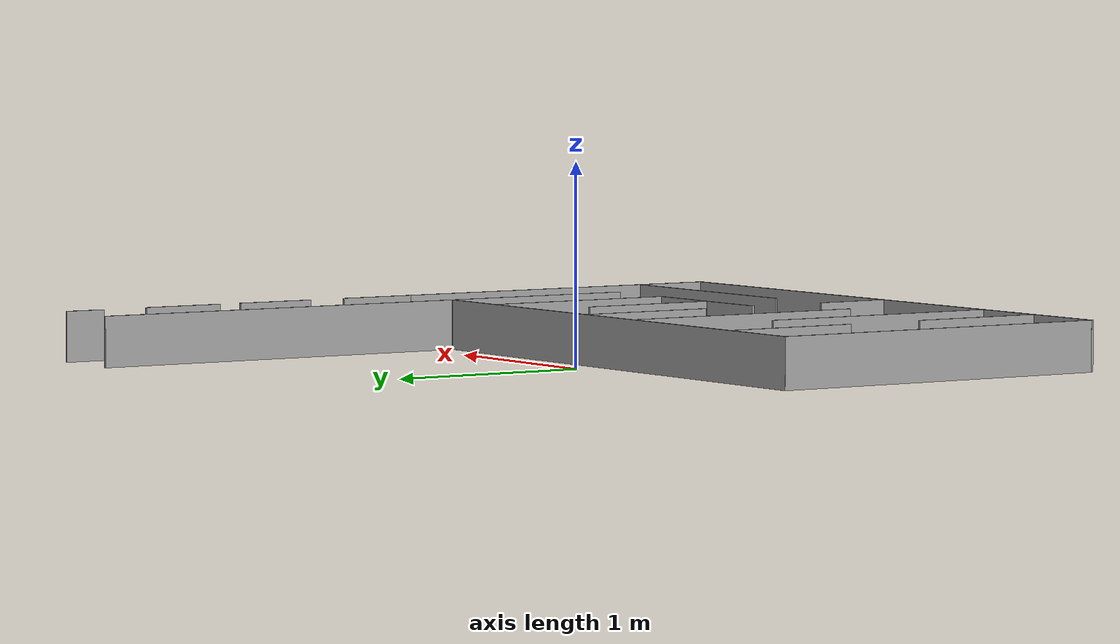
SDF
<?xml version='1.0'?>
<sdf version='1.6'>
  <model name='ris_assg'>
    <pose frame=''>0.1185 -0.065509 0 0 -0 0</pose>
    <link name='Wall_0'>
      <collision name='Wall_0_Collision'>
        <geometry>
          <box>
            <size>1.82069 0.01 0.25</size>
          </box>
        </geometry>
        <pose frame=''>0 0 0.125 0 -0 0</pose>
      </collision>
      <visual name='Wall_0_Visual'>
        <pose frame=''>0 0 0.125 0 -0 0</pose>
        <geometry>
          <box>
            <size>1.82069 0.01 0.25</size>
          </box>
        </geometry>
        <material>
          <script>
            <uri>file://media/materials/scripts/gazebo.material</uri>
            <name>Gazebo/Grey</name>
          </script>
          <ambient>1 1 1 1</ambient>
        </material>
      </visual>
      <pose frame=''>-1.6175 -0.994991 0 0 -0 1.5708</pose>
    </link>
    <link name='Wall_12'>
      <collision name='Wall_12_Collision'>
        <geometry>
          <box>
            <size>1.81 0.01 0.25</size>
          </box>
        </geometry>
        <pose frame=''>0 0 0.125 0 -0 0</pose>
      </collision>
      <visual name='Wall_12_Visual'>
        <pose frame=''>0 0 0.125 0 -0 0</pose>
        <geometry>
          <box>
            <size>1.81 0.01 0.25</size>
          </box>
        </geometry>
        <material>
          <script>
            <uri>file://media/materials/scripts/gazebo.material</uri>
            <name>Gazebo/Grey</name>
          </script>
          <ambient>1 1 1 1</ambient>
        </material>
      </visual>
      <pose frame=''>1.6175 -0.989491 0 0 -0 1.5708</pose>
    </link>
    <link name='Wall_15'>
      <collision name='Wall_15_Collision'>
        <geometry>
          <box>
            <size>0.7 0.01 0.25</size>
          </box>
        </geometry>
        <pose frame=''>0 0 0.125 0 -0 0</pose>
      </collision>
      <visual name='Wall_15_Visual'>
        <pose frame=''>0 0 0.125 0 -0 0</pose>
        <geometry>
          <box>
            <size>0.7 0.01 0.25</size>
          </box>
        </geometry>
        <material>
          <script>
            <uri>file://media/materials/scripts/gazebo.material</uri>
            <name>Gazebo/Grey</name>
          </script>
          <ambient>1 1 1 1</ambient>
        </material>
      </visual>
      <pose frame=''>-1.1765 -1.54949 0 0 -0 1.5708</pose>
    </link>
    <link name='Wall_17'>
      <collision name='Wall_17_Collision'>
        <geometry>
          <box>
            <size>0.7 0.01 0.25</size>
          </box>
        </geometry>
        <pose frame=''>0 0 0.125 0 -0 0</pose>
      </collision>
      <visual name='Wall_17_Visual'>
        <pose frame=''>0 0 0.125 0 -0 0</pose>
        <geometry>
          <box>
            <size>0.7 0.01 0.25</size>
          </box>
        </geometry>
        <material>
          <script>
            <uri>file://media/materials/scripts/gazebo.material</uri>
            <name>Gazebo/Grey</name>
          </script>
          <ambient>1 1 1 1</ambient>
        </material>
      </visual>
      <pose frame=''>-1.1785 -0.439491 0 0 -0 1.5708</pose>
    </link>
    <link name='Wall_21'>
      <collision name='Wall_21_Collision'>
        <geometry>
          <box>
            <size>1.28 0.01 0.25</size>
          </box>
        </geometry>
        <pose frame=''>0 0 0.125 0 -0 0</pose>
      </collision>
      <visual name='Wall_21_Visual'>
        <pose frame=''>0 0 0.125 0 -0 0</pose>
        <geometry>
          <box>
            <size>1.28 0.01 0.25</size>
          </box>
        </geometry>
        <material>
          <script>
            <uri>file://media/materials/scripts/gazebo.material</uri>
            <name>Gazebo/Grey</name>
          </script>
          <ambient>1 1 1 1</ambient>
        </material>
      </visual>
      <pose frame=''>-0.7825 -1.26049 0 0 -0 1.5708</pose>
    </link>
    <link name='Wall_23'>
      <collision name='Wall_23_Collision'>
        <geometry>
          <box>
            <size>1.29 0.01 0.25</size>
          </box>
        </geometry>
        <pose frame=''>0 0 0.125 0 -0 0</pose>
      </collision>
      <visual name='Wall_23_Visual'>
        <pose frame=''>0 0 0.125 0 -0 0</pose>
        <geometry>
          <box>
            <size>1.29 0.01 0.25</size>
          </box>
        </geometry>
        <material>
          <script>
            <uri>file://media/materials/scripts/gazebo.material</uri>
            <name>Gazebo/Grey</name>
          </script>
          <ambient>1 1 1 1</ambient>
        </material>
      </visual>
      <pose frame=''>-0.3805 -0.733491 0 0 -0 1.5708</pose>
    </link>
    <link name='Wall_25'>
      <collision name='Wall_25_Collision'>
        <geometry>
          <box>
            <size>0.71 0.01 0.25</size>
          </box>
        </geometry>
        <pose frame=''>0 0 0.125 0 -0 0</pose>
      </collision>
      <visual name='Wall_25_Visual'>
        <pose frame=''>0 0 0.125 0 -0 0</pose>
        <geometry>
          <box>
            <size>0.71 0.01 0.25</size>
          </box>
        </geometry>
        <material>
          <script>
            <uri>file://media/materials/scripts/gazebo.material</uri>
            <name>Gazebo/Grey</name>
          </script>
          <ambient>1 1 1 1</ambient>
        </material>
      </visual>
      <pose frame=''>0.0255 -0.441491 0 0 -0 1.5708</pose>
    </link>
    <link name='Wall_27'>
      <collision name='Wall_27_Collision'>
        <geometry>
          <box>
            <size>0.4 0.01 0.25</size>
          </box>
        </geometry>
        <pose frame=''>0 0 0.125 0 -0 0</pose>
      </collision>
      <visual name='Wall_27_Visual'>
        <pose frame=''>0 0 0.125 0 -0 0</pose>
        <geometry>
          <box>
            <size>0.4 0.01 0.25</size>
          </box>
        </geometry>
        <material>
          <script>
            <uri>file://media/materials/scripts/gazebo.material</uri>
            <name>Gazebo/Grey</name>
          </script>
          <ambient>1 1 1 1</ambient>
        </material>
      </visual>
      <pose frame=''>0.0255 -1.70049 0 0 0 -1.5708</pose>
    </link>
    <link name='Wall_29'>
      <collision name='Wall_29_Collision'>
        <geometry>
          <box>
            <size>0.80125 0.01 0.25</size>
          </box>
        </geometry>
        <pose frame=''>0 0 0.125 0 -0 0</pose>
      </collision>
      <visual name='Wall_29_Visual'>
        <pose frame=''>0 0 0.125 0 -0 0</pose>
        <geometry>
          <box>
            <size>0.80125 0.01 0.25</size>
          </box>
        </geometry>
        <material>
          <script>
            <uri>file://media/materials/scripts/gazebo.material</uri>
            <name>Gazebo/Grey</name>
          </script>
          <ambient>1 1 1 1</ambient>
        </material>
      </visual>
      <pose frame=''>0.44 -1.09549 0 0 -0 0</pose>
    </link>
    <link name='Wall_31'>
      <collision name='Wall_31_Collision'>
        <geometry>
          <box>
            <size>1.01 0.01 0.25</size>
          </box>
        </geometry>
        <pose frame=''>0 0 0.125 0 -0 0</pose>
      </collision>
      <visual name='Wall_31_Visual'>
        <pose frame=''>0 0 0.125 0 -0 0</pose>
        <geometry>
          <box>
            <size>1.01 0.01 0.25</size>
          </box>
        </geometry>
        <material>
          <script>
            <uri>file://media/materials/scripts/gazebo.material</uri>
            <name>Gazebo/Grey</name>
          </script>
          <ambient>1 1 1 1</ambient>
        </material>
      </visual>
      <pose frame=''>0.8355 -0.595491 0 0 -0 1.5708</pose>
    </link>
    <link name='Wall_33'>
      <collision name='Wall_33_Collision'>
        <geometry>
          <box>
            <size>0.71 0.01 0.25</size>
          </box>
        </geometry>
        <pose frame=''>0 0 0.125 0 -0 0</pose>
      </collision>
      <visual name='Wall_33_Visual'>
        <pose frame=''>0 0 0.125 0 -0 0</pose>
        <geometry>
          <box>
            <size>0.71 0.01 0.25</size>
          </box>
        </geometry>
        <material>
          <script>
            <uri>file://media/materials/scripts/gazebo.material</uri>
            <name>Gazebo/Grey</name>
          </script>
          <ambient>1 1 1 1</ambient>
        </material>
      </visual>
      <pose frame=''>0.4335 -0.737491 0 0 -0 1.5708</pose>
    </link>
    <link name='Wall_35'>
      <collision name='Wall_35_Collision'>
        <geometry>
          <box>
            <size>1.215 0.01 0.25</size>
          </box>
        </geometry>
        <pose frame=''>0 0 0.125 0 -0 0</pose>
      </collision>
      <visual name='Wall_35_Visual'>
        <pose frame=''>0 0 0.125 0 -0 0</pose>
        <geometry>
          <box>
            <size>1.215 0.01 0.25</size>
          </box>
        </geometry>
        <material>
          <script>
            <uri>file://media/materials/scripts/gazebo.material</uri>
            <name>Gazebo/Grey</name>
          </script>
          <ambient>1 1 1 1</ambient>
        </material>
      </visual>
      <pose frame=''>1.012 -1.50149 0 0 -0 3.14159</pose>
    </link>
    <link name='Wall_42'>
      <collision name='Wall_42_Collision'>
        <geometry>
          <box>
            <size>2.85 0.01 0.25</size>
          </box>
        </geometry>
        <pose frame=''>0 0 0.125 0 -0 0</pose>
      </collision>
      <visual name='Wall_42_Visual'>
        <pose frame=''>0 0 0.125 0 -0 0</pose>
        <geometry>
          <box>
            <size>2.85 0.01 0.25</size>
          </box>
        </geometry>
        <material>
          <script>
            <uri>file://media/materials/scripts/gazebo.material</uri>
            <name>Gazebo/Grey</name>
          </script>
          <ambient>1 1 1 1</ambient>
        </material>
      </visual>
      <pose frame=''>-0.1975 -0.089491 0 0 -0 0</pose>
    </link>
    <link name='Wall_44'>
      <collision name='Wall_44_Collision'>
        <geometry>
          <box>
            <size>1.025 0.01 0.25</size>
          </box>
        </geometry>
        <pose frame=''>0 0 0.125 0 -0 0</pose>
      </collision>
      <visual name='Wall_44_Visual'>
        <pose frame=''>0 0 0.125 0 -0 0</pose>
        <geometry>
          <box>
            <size>1.025 0.01 0.25</size>
          </box>
        </geometry>
        <material>
          <script>
            <uri>file://media/materials/scripts/gazebo.material</uri>
            <name>Gazebo/Grey</name>
          </script>
          <ambient>1 1 1 1</ambient>
        </material>
      </visual>
      <pose frame=''>1.2245 -0.590991 0 0 0 -1.5708</pose>
    </link>
    <link name='Wall_49'>
      <collision name='Wall_49_Collision'>
        <geometry>
          <box>
            <size>1.994 0.01 0.25</size>
          </box>
        </geometry>
        <pose frame=''>0 0 0.125 0 -0 0</pose>
      </collision>
      <visual name='Wall_49_Visual'>
        <pose frame=''>0 0 0.125 0 -0 0</pose>
        <geometry>
          <box>
            <size>1.994 0.01 0.25</size>
          </box>
        </geometry>
        <material>
          <script>
            <uri>file://media/materials/scripts/gazebo.material</uri>
            <name>Gazebo/Grey</name>
          </script>
          <ambient>1 1 1 1</ambient>
        </material>
      </visual>
      <pose frame=''>1.2245 0.908509 0 0 -0 1.5708</pose>
    </link>
    <link name='Wall_51'>
      <collision name='Wall_51_Collision'>
        <geometry>
          <box>
            <size>0.41 0.01 0.25</size>
          </box>
        </geometry>
        <pose frame=''>0 0 0.125 0 -0 0</pose>
      </collision>
      <visual name='Wall_51_Visual'>
        <pose frame=''>0 0 0.125 0 -0 0</pose>
        <geometry>
          <box>
            <size>0.41 0.01 0.25</size>
          </box>
        </geometry>
        <material>
          <script>
            <uri>file://media/materials/scripts/gazebo.material</uri>
            <name>Gazebo/Grey</name>
          </script>
          <ambient>1 1 1 1</ambient>
        </material>
      </visual>
      <pose frame=''>1.6175 0.713509 0 0 -0 1.5708</pose>
    </link>
    <link name='Wall_56'>
      <collision name='Wall_56_Collision'>
        <geometry>
          <box>
            <size>0.42 0.01 0.25</size>
          </box>
        </geometry>
        <pose frame=''>0 0 0.125 0 -0 0</pose>
      </collision>
      <visual name='Wall_56_Visual'>
        <pose frame=''>0 0 0.125 0 -0 0</pose>
        <geometry>
          <box>
            <size>0.42 0.01 0.25</size>
          </box>
        </geometry>
        <material>
          <script>
            <uri>file://media/materials/scripts/gazebo.material</uri>
            <name>Gazebo/Grey</name>
          </script>
          <ambient>1 1 1 1</ambient>
        </material>
      </visual>
      <pose frame=''>1.6175 1.24651 0 0 0 -1.5708</pose>
    </link>
    <link name='Wall_60'>
      <collision name='Wall_60_Collision'>
        <geometry>
          <box>
            <size>0.41 0.01 0.25</size>
          </box>
        </geometry>
        <pose frame=''>0 0 0.125 0 -0 0</pose>
      </collision>
      <visual name='Wall_60_Visual'>
        <pose frame=''>0 0 0.125 0 -0 0</pose>
        <geometry>
          <box>
            <size>0.41 0.01 0.25</size>
          </box>
        </geometry>
        <material>
          <script>
            <uri>file://media/materials/scripts/gazebo.material</uri>
            <name>Gazebo/Grey</name>
          </script>
          <ambient>1 1 1 1</ambient>
        </material>
      </visual>
      <pose frame=''>1.6175 0.110509 0 0 -0 1.5708</pose>
    </link>
    <link name='Wall_62'>
      <collision name='Wall_62_Collision'>
        <geometry>
          <box>
            <size>0.209 0.01 0.25</size>
          </box>
        </geometry>
        <pose frame=''>0 0 0.125 0 -0 0</pose>
      </collision>
      <visual name='Wall_62_Visual'>
        <pose frame=''>0 0 0.125 0 -0 0</pose>
        <geometry>
          <box>
            <size>0.209 0.01 0.25</size>
          </box>
        </geometry>
        <material>
          <script>
            <uri>file://media/materials/scripts/gazebo.material</uri>
            <name>Gazebo/Grey</name>
          </script>
          <ambient>1 1 1 1</ambient>
        </material>
      </visual>
      <pose frame=''>1.6115 1.80101 0 0 -0 1.5708</pose>
    </link>
    <link name='Wall_9'>
      <collision name='Wall_9_Collision'>
        <geometry>
          <box>
            <size>3.24518 0.01 0.25</size>
          </box>
        </geometry>
        <pose frame=''>0 0 0.125 0 -0 0</pose>
      </collision>
      <visual name='Wall_9_Visual'>
        <pose frame=''>0 0 0.125 0 -0 0</pose>
        <geometry>
          <box>
            <size>3.24518 0.01 0.25</size>
          </box>
        </geometry>
        <material>
          <script>
            <uri>file://media/materials/scripts/gazebo.material</uri>
            <name>Gazebo/Grey</name>
          </script>
          <ambient>1 1 1 1</ambient>
        </material>
      </visual>
      <pose frame=''>0 -1.89499 0 0 -0 0.0034</pose>
    </link>
    <static>1</static>
  </model>
</sdf>
